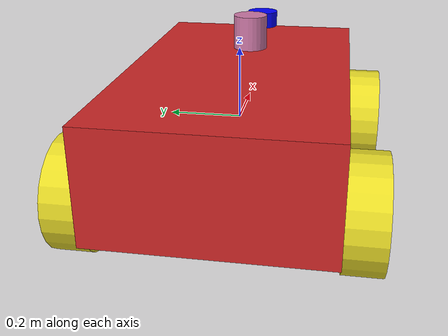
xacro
<?xml version="1.0"?>

<robot name="car" xmlns:xacro="http://www.ros.org/wiki/xacro">

    <xacro:property name="body_link_x_dim" value="1"/>
    <xacro:property name="body_link_y_dim" value="0.6"/>
    <xacro:property name="body_link_z_dim" value="0.3"/>

    <xacro:property name="wheel_link_radius" value="0.15"/>
    <xacro:property name="wheel_link_length" value="0.1"/>
    <xacro:property name="wheel_link_z_location" value="-0.1"/>

    <xacro:property name="body_density" value="2710.0"/>
    <xacro:property name="wheel_desity" value="2710.0"/>

    <xacro:property name="pi_const" value="3.14159265"/>

    <xacro:property name="body_mass" value="${body_density*body_link_x_dim*body_link_y_dim*body_link_z_dim}"/>

    <xacro:property name="wheel_mass"
        value="${wheel_desity*wheel_link_length*wheel_link_radius*wheel_link_radius*pi_const}"/>

    <xacro:property name="Iz_wheel" value="${0.5*wheel_mass*wheel_link_radius*wheel_link_radius}"/>
    <xacro:property name="I_wheel"
        value="${(1.0/12.0)*wheel_mass*(3.0*wheel_link_radius*wheel_link_radius+wheel_link_length*wheel_link_length)}"/>

    <xacro:macro name="inertia_wheel">
        <inertial>
            <origin rpy="0.0 0.0 0.0" xyz="0.0 0.0 0.0"/>
            <mass value="${wheel_mass}"/>
            <inertia ixx="${I_wheel}" ixy="0.0" ixz="0.0" iyy="${I_wheel}" izz="${Iz_wheel}" iyz="0.0"/>
        </inertial>
    </xacro:macro>

    <xacro:include filename="$(find robot_model_pkg)/urdf/car.gazebo"/>

<!-- LINK , JOINT -->

    <link name="dummy">
    </link>
    <joint name="dummy_joint" type="fixed">
        <parent link="dummy"/>
        <child link="body_link"/>
    </joint>

    <!-- body -->
    <link name="body_link">

        <visual>
            <origin xyz="0.0 0.0 0.0" rpy="0.0 0.0 0.0"/>
            <geometry>
                <box size="${body_link_x_dim} ${body_link_y_dim} ${body_link_z_dim}"/>
            </geometry>
        </visual>

        <inertial>
            <origin xyz="0.0 0.0 0.0" rpy="0.0 0.0 0.0"/>
            <mass value="${body_mass}"/>
            <inertia
                ixx="${(1/12)*body_mass*(body_link_y_dim*body_link_y_dim+body_link_z_dim*body_link_z_dim)}"
                ixy="0"
                ixz="0"
                iyy="${(1/12)*body_mass*(body_link_x_dim*body_link_x_dim+body_link_z_dim*body_link_z_dim)}"
                iyz="0"
                izz="${(1/12)*body_mass*(body_link_y_dim*body_link_y_dim+body_link_x_dim*body_link_x_dim)}"/>
        </inertial>

        <collision>
            <origin xyz="0.0 0.0 0.0" rpy="0.0 0.0 0.0"/>
            <geometry>
                <box size="${body_link_x_dim} ${body_link_y_dim} ${body_link_z_dim}"/>
            </geometry>
        </collision>
    </link>
    <!-- end body  -->

    <!-- Back right wheel -->
    <joint name="wheel1_joint" type="continuous">
        <parent link="body_link"/>
        <child link="wheel1_link"/>
        <origin xyz="${-body_link_x_dim/2+1.2*wheel_link_radius} ${-body_link_y_dim/2 - wheel_link_length/2} ${wheel_link_z_location}"
                rpy="0.0 0.0 0.0"/>

        <axis xyz="0 1 0"/>
        <limit effort="1000.0" velocity="1000.0"/>
        <dynamics damping="1.0" friction="1.0"/>
    </joint>

    <link name="wheel1_link">

        <visual>
            <origin xyz="0.0 0.0 0.0" rpy="1.570795 0 0"/>
            <geometry>
                <cylinder radius="${wheel_link_radius}" length="${wheel_link_length}"/>
            </geometry>
        </visual>

        <collision>
            <origin xyz="0.0 0.0 0.0" rpy="1.570795 0 0"/>
            <geometry>
                <cylinder radius="${wheel_link_radius}" length="${wheel_link_length}"/>
            </geometry>
        </collision>

        <xacro:inertia_wheel/>
    </link>
    <!-- End back right wheel -->

    <!-- Back left wheel -->
    <joint name="wheel2_joint" type="continuous">
        <parent link="body_link"/>
        <child link="wheel2_link"/>
        <origin xyz="${-body_link_x_dim/2 + 1.2*wheel_link_radius} ${body_link_y_dim/2 + wheel_link_length/2} ${wheel_link_z_location}"
                rpy="0.0 0.0 0.0"/>

        <axis xyz="0 1 0"/>
        <limit effort="1000.0" velocity="1000.0"/>
        <dynamics damping="1.0" friction="1.0"/>

    </joint>

    <link name="wheel2_link">

        <visual>
            <origin xyz="0.0 0.0 0.0" rpy="1.570795 0 0"/>
            <geometry>
                <cylinder radius="${wheel_link_radius}" length="${wheel_link_length}"/>
            </geometry>
        </visual>

        <collision>
            <origin xyz="0.0 0.0 0.0" rpy="1.570795 0 0"/>
            <geometry>
                <cylinder radius="${wheel_link_radius}" length="${wheel_link_length}"/>
            </geometry>
        </collision>

        <xacro:inertia_wheel/>
    </link>
    <!-- End back left wheel -->

    <!-- Front right wheel -->
    <joint name="wheel3_joint" type="continuous">
        <parent link="body_link"/>
        <child link="wheel3_link"/>
        <origin xyz="${body_link_x_dim/2 - 1.2*wheel_link_radius} ${-body_link_y_dim/2 - wheel_link_length/2} ${wheel_link_z_location}"
                rpy="0.0 0.0 0.0"/>
        <axis xyz="0 1 0"/>
        <limit effort="1000" velocity="1000"/>
        <dynamics damping="1.0" friction="1.0"/>
    </joint>

    <link name="wheel3_link">

        <visual>
            <origin xyz="0.0 0.0 0.0" rpy="1.570795 0 0"/>
            <geometry>
                <cylinder radius="${wheel_link_radius}" length="${wheel_link_length}"/>
            </geometry>
        </visual>

        <collision>
            <origin xyz="0.0 0.0 0.0" rpy="1.570795 0 0"/>
            <geometry>
                <cylinder radius="${wheel_link_radius}" length="${wheel_link_length}"/>
            </geometry>
        </collision>

        <xacro:inertia_wheel/>
    </link>
    <!-- End front right wheel -->

    <!-- Front left wheel -->
    <joint name="wheel4_joint" type="continuous">
        <parent link="body_link"/>
        <child link="wheel4_link"/>
        <origin xyz="${body_link_x_dim/2 - 1.2*wheel_link_radius} ${body_link_y_dim/2 + wheel_link_length/2} ${wheel_link_z_location}"
                rpy="0.0 0.0 0.0"/>
        <axis xyz="0 1 0"/>
        <limit effort="1000" velocity="1000"/>
        <dynamics damping="1.0" friction="1.0"/>
    </joint>

    <link name="wheel4_link">

        <visual>
            <origin xyz="0.0 0.0 0.0" rpy="1.570795 0 0"/>
            <geometry>
                <cylinder radius="${wheel_link_radius}" length="${wheel_link_length}"/>
            </geometry>
        </visual>

        <collision>
            <origin xyz="0.0 0.0 0.0" rpy="1.570795 0 0"/>
            <geometry>
                <cylinder radius="${wheel_link_radius}" length="${wheel_link_length}"/>
            </geometry>
        </collision>

        <xacro:inertia_wheel/>
    </link>
    <!-- End front left wheel -->

    <!-- Camera link -->
    <joint name="camera_joint" type="fixed">
        <parent link="body_link"/>
        <child link="camera_link"/>
        <origin xyz="0.2 0.0 0" rpy="0.0 0.0 0.0"/>
    </joint>

    <!-- Camera link with visual -->
    <link name="camera_link">
        <visual>
            <origin xyz="0.0 0.0 0.2" rpy="0.0 0.0 0.0"/>
            <geometry>
                <!-- Here, we use a cylinder to represent the camera visually -->
                <cylinder radius="0.05" length="0.1"/>
            </geometry>
        </visual>
    </link>

    <!-- End camera link -->

    <!-- Front center sensor -->
    <link name="front_sensor_link">
        <visual>
            <origin xyz="0 0 0.05" rpy="0 0 0"/>
            <geometry>
                <cylinder radius="0.05" length="0.1"/>
            </geometry>
            <material name="blue">
                <color rgba="0 0 1 1"/>
            </material>
        </visual>
    </link>
    <joint name="front_sensor_joint" type="fixed">
        <parent link="body_link"/>
        <child link="front_sensor_link"/>
        <origin xyz="0.5 0 0.1" rpy="0 0 0"/>
    </joint>

</robot>
